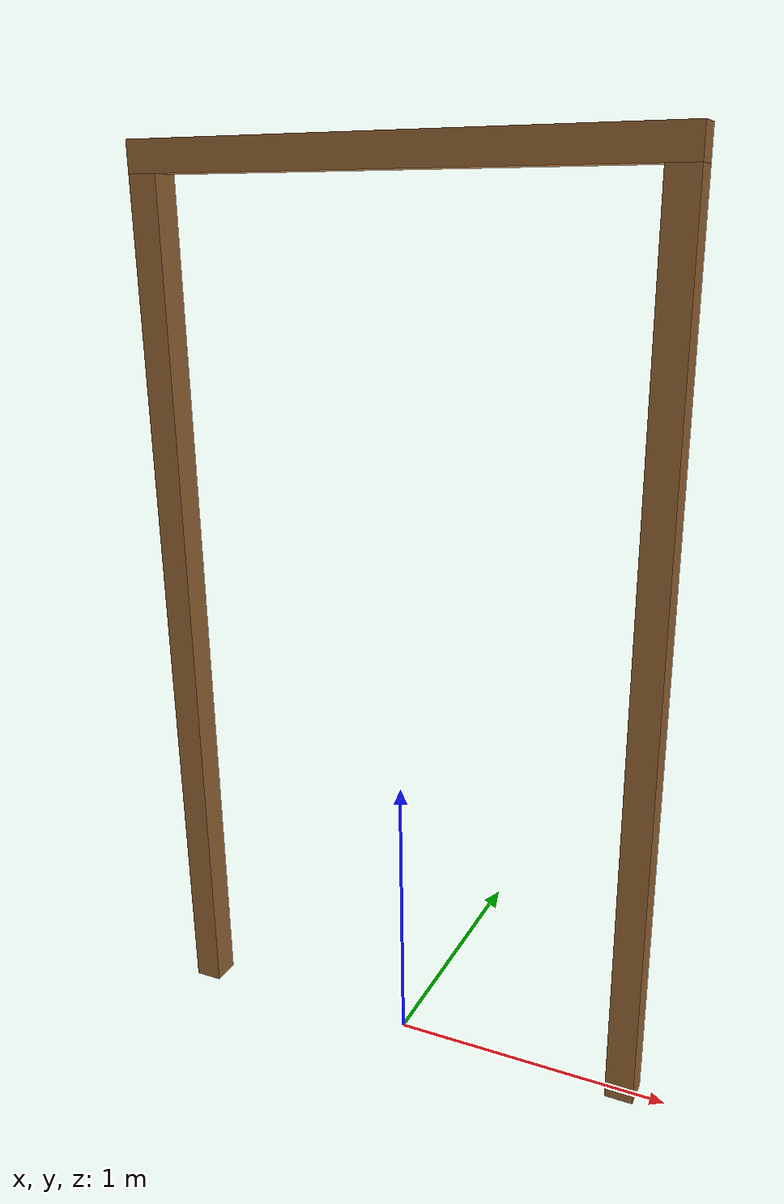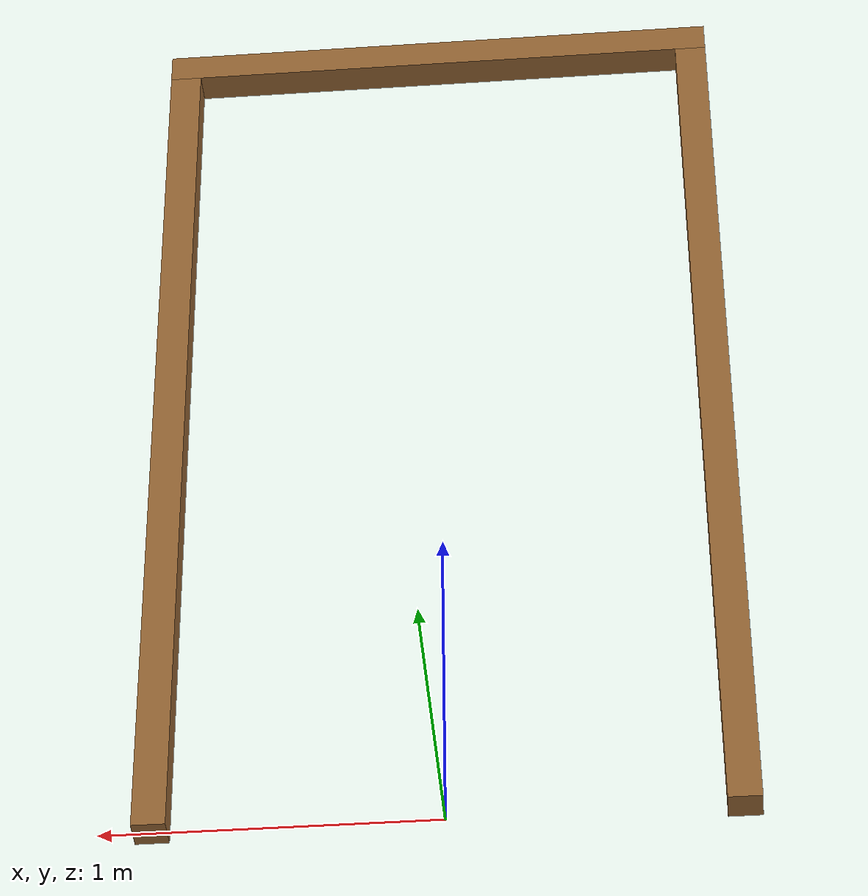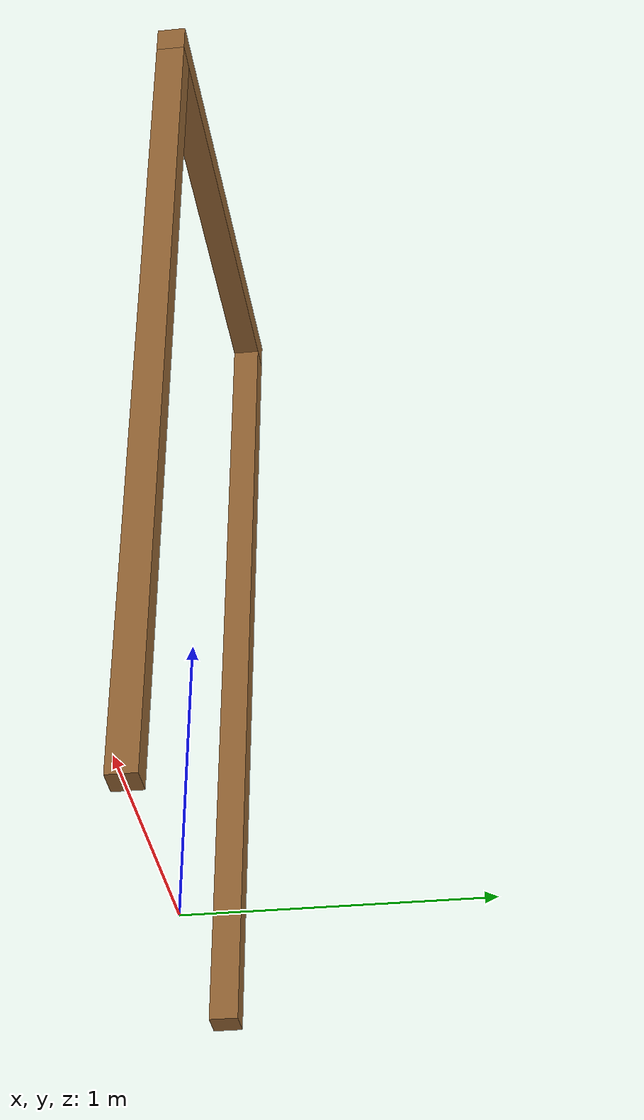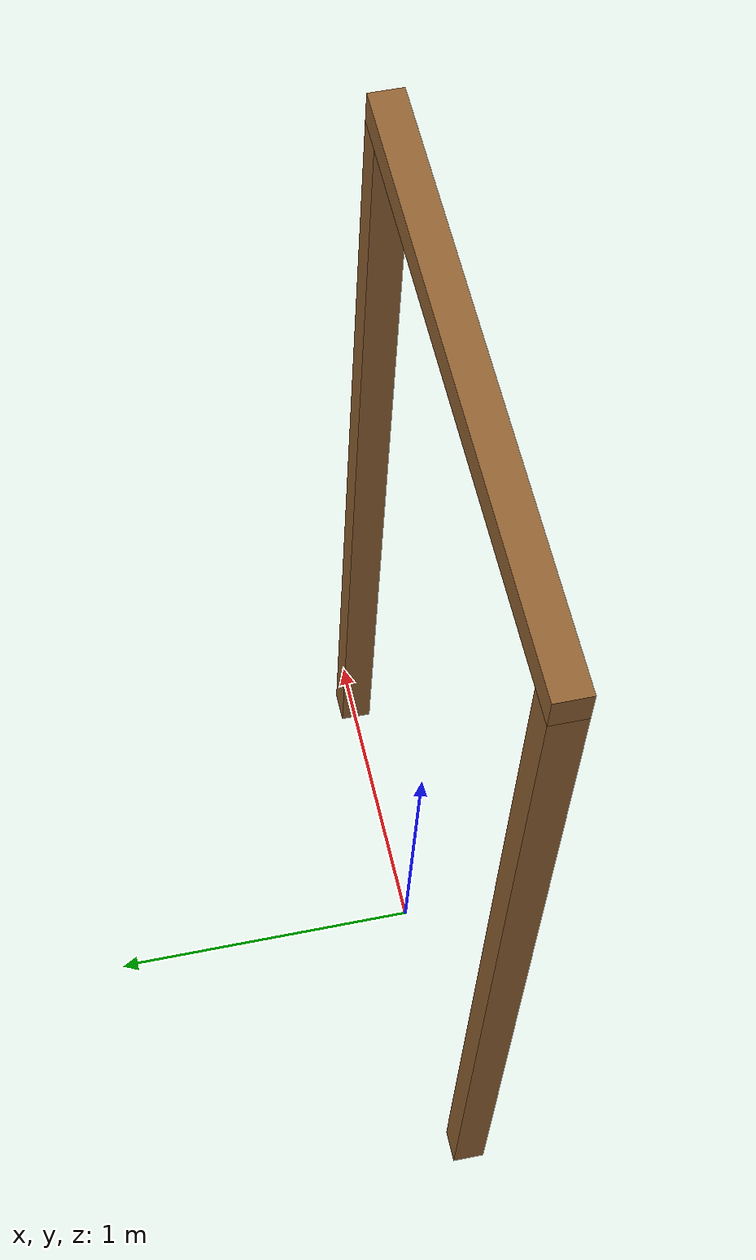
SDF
<?xml version='1.0'?>
<sdf version="1.6">
  <model name="gate_leg">
    <static>true</static>
    <link name="link">
      <pose>0 0 0 0 0 0</pose>
      <visual name="pillar_left">
        <pose>-0.85 0 1.5 0 0 0</pose>
        <geometry><box><size>0.1 0.1 3.0</size></box></geometry>
        <material>
          <ambient>0.576 0.389 0.199 1</ambient>
          <diffuse>0.576 0.389 0.199 1</diffuse><emissive>0.576 0.389 0.199 1</emissive>
        </material>
      </visual>
      <collision name="pillar_left_col">
        <pose>-0.85 0 1.5 0 0 0</pose>
        <geometry><box><size>0.1 0.1 3.0</size></box></geometry>
      </collision>
      <visual name="pillar_right">
        <pose>0.85 0 1.5 0 0 0</pose>
        <geometry><box><size>0.1 0.1 3.0</size></box></geometry>
        <material>
          <ambient>0.576 0.389 0.199 1</ambient>
          <diffuse>0.576 0.389 0.199 1</diffuse><emissive>0.576 0.389 0.199 1</emissive>
        </material>
      </visual>
      <collision name="pillar_right_col">
        <pose>0.85 0 1.5 0 0 0</pose>
        <geometry><box><size>0.1 0.1 3.0</size></box></geometry>
      </collision>
      <visual name="top_bar">
        <pose>0 0 3.05 0 0 0</pose>
        <geometry><box><size>1.8 0.1 0.1</size></box></geometry>
        <material>
          <ambient>0.576 0.389 0.199 1</ambient>
          <diffuse>0.576 0.389 0.199 1</diffuse><emissive>0.576 0.389 0.199 1</emissive>
        </material>
      </visual>
      <collision name="top_bar_col">
        <pose>0 0 3.05 0 0 0</pose>
        <geometry><box><size>1.8 0.1 0.1</size></box></geometry>
      </collision>
    </link>
  </model>
</sdf>
